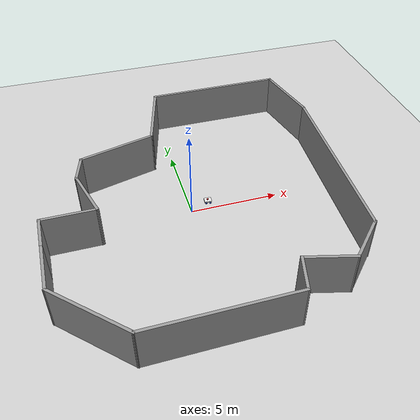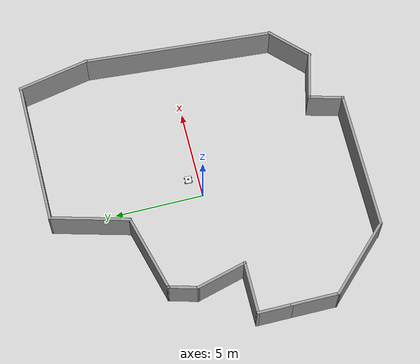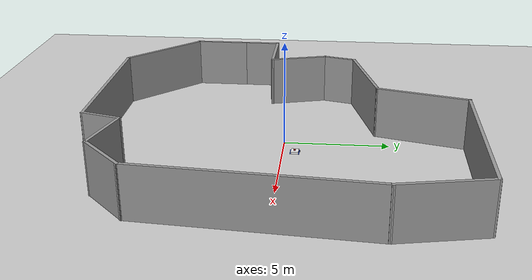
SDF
<sdf version="1.7">
 <world name="default">
  <light name="sun" type="directional">
   <pose>0 0 10 0 -0 0</pose>
   <diffuse>0.8 0.8 0.8 1</diffuse>
   <specular>0.2 0.2 0.2 1</specular>
   <attenuation>
    <range>1000</range>
    <constant>0.9</constant>
    <linear>0.01</linear>
    <quadratic>0.001</quadratic>
   </attenuation>
   <direction>-0.5 0.1 -0.9</direction>
   <spot><inner_angle>0</inner_angle><outer_angle>0</outer_angle><falloff>0</falloff></spot>
  </light>
  <model name="ground_plane">
   <static>1</static>
   <link name="link">
    <collision name="collision">
     <geometry><plane><normal>0 0 1</normal><size>100 100</size></plane></geometry>
     <surface><friction><ode><mu>100</mu><mu2>50</mu2></ode></friction></surface>
    </collision>
    <visual name="visual">
     <cast_shadows>0</cast_shadows>
     <geometry><plane><normal>0 0 1</normal><size>100 100</size></plane></geometry>
     <material>
      <script><uri>file://media/materials/scripts/gazebo.material</uri><name>Gazebo/Grey</name></script>
     </material>
    </visual>
   </link>
  </model>
  <gravity>0 0 -9.8</gravity>
  <magnetic_field>6e-06 2.3e-05 -4.2e-05</magnetic_field>
  <atmosphere type="adiabatic"/>
  <physics type="ode">
   <max_step_size>0.001</max_step_size>
   <real_time_factor>1</real_time_factor>
   <real_time_update_rate>1000</real_time_update_rate>
  </physics>
  <scene><ambient>0.4 0.4 0.4 1</ambient><background>0.7 0.7 0.7 1</background><shadows>1</shadows></scene>
  <spherical_coordinates>
   <surface_model>EARTH_WGS84</surface_model>
   <latitude_deg>0</latitude_deg>
   <longitude_deg>0</longitude_deg>
   <elevation>0</elevation>
   <heading_deg>0</heading_deg>
  </spherical_coordinates>
  <model name="my_bot">
   <link name="base_link">
    <inertial>
     <pose>0.228 0 0.045 0 -0 0</pose>
     <mass>2.5</mass>
     <inertia>
      <ixx>0.0591105</ixx>
      <ixy>0</ixy>
      <ixz>0.0044</ixz>
      <iyy>0.0344858</iyy>
      <iyz>-6.96389e-20</iyz>
      <izz>0.0800463</izz>
     </inertia>
    </inertial>
    <collision name="base_link_fixed_joint_lump__chassis_collision">
     <pose>0.1 0 1 0 -0 0</pose>
     <geometry><box><size>0.4 0.35 0.1</size></box></geometry>
    </collision>
    <collision name="base_link_fixed_joint_lump__laser_frame_collision_1">
     <pose>0.1 0 0.125 0 -0 0</pose>
     <geometry><cylinder><length>0.04</length><radius>0.05</radius></cylinder></geometry>
    </collision>
    <collision name="base_link_fixed_joint_lump__leftf_wheel_collision_2">
     <pose>0.22 0.20416 0 -1.5708 0 0</pose>
     <geometry><cylinder><length>0.04</length><radius>0.05</radius></cylinder></geometry>
     <surface><friction><ode><mu>0.001</mu><mu2>0.001</mu2></ode></friction></surface>
    </collision>
    <collision name="base_link_fixed_joint_lump__rightf_wheel_collision_3">
     <pose>0.22 -0.20416 0 1.5708 -0 0</pose>
     <geometry><cylinder><length>0.04</length><radius>0.05</radius></cylinder></geometry>
     <surface><friction><ode><mu>0.001</mu><mu2>0.001</mu2></ode></friction></surface>
    </collision>
    <visual name="base_link_fixed_joint_lump__chassis_visual">
     <pose>0.1 0 0.05 0 -0 0</pose>
     <geometry><box><size>0.4 0.35 0.1</size></box></geometry>
     <material>
      <script><name>Gazebo/White</name><uri>file://media/materials/scripts/gazebo.material</uri></script>
     </material>
    </visual>
    <visual name="base_link_fixed_joint_lump__camera_link_visual_1">
     <pose>0.31 0 0.07 0 -0 0</pose>
     <geometry><box><size>0.01 0.03 0.03</size></box></geometry>
     <material>
      <script><name>Gazebo/Red</name><uri>file://media/materials/scripts/gazebo.material</uri></script>
     </material>
    </visual>
    <visual name="base_link_fixed_joint_lump__laser_frame_visual_2">
     <pose>0.1 0 0.125 0 -0 0</pose>
     <geometry><cylinder><length>0.04</length><radius>0.05</radius></cylinder></geometry>
     <material>
      <script><name>Gazebo/Red</name><uri>file://media/materials/scripts/gazebo.material</uri></script>
     </material>
    </visual>
    <visual name="base_link_fixed_joint_lump__leftf_wheel_visual_3">
     <pose>0.22 0.20416 0 -1.5708 0 0</pose>
     <geometry><cylinder><length>0.04</length><radius>0.05</radius></cylinder></geometry>
     <material>
      <script><name>Gazebo/Blue</name><uri>file://media/materials/scripts/gazebo.material</uri></script>
     </material>
    </visual>
    <visual name="base_link_fixed_joint_lump__rightf_wheel_visual_4">
     <pose>0.22 -0.20416 0 1.5708 -0 0</pose>
     <geometry><cylinder><length>0.04</length><radius>0.05</radius></cylinder></geometry>
     <material>
      <script><name>Gazebo/Blue</name><uri>file://media/materials/scripts/gazebo.material</uri></script>
     </material>
    </visual>
    <sensor name="camera" type="camera">
     <visualize>1</visualize>
     <update_rate>10</update_rate>
     <camera>
      <horizontal_fov>1.089</horizontal_fov>
      <image><format>R8G8B8</format><width>640</width><height>480</height></image>
      <clip><near>0.05</near><far>8</far></clip>
     </camera>
     <plugin name="camera_controller" filename="libgazebo_ros_camera.so">
      <frame_name>camera_link_optical</frame_name>
     </plugin>
     <pose>0.31 0 0.07 0 -0 0</pose>
    </sensor>
    <sensor name="laser" type="ray">
     <visualize>0</visualize>
     <update_rate>10</update_rate>
     <ray>
      <scan>
       <horizontal>
        <samples>360</samples>
        <min_angle>-3.14</min_angle>
        <max_angle>3.14</max_angle>
        <resolution>1</resolution>
       </horizontal>
       <vertical><samples>1</samples><min_angle>0</min_angle><max_angle>0</max_angle></vertical>
      </scan>
      <range><min>0.3</min><max>12</max></range>
     </ray>
     <plugin name="laser_controller" filename="libgazebo_ros_ray_sensor.so">
      <ros><argument>~/out:=scan</argument></ros>
      <output_type>sensor_msgs/LaserScan</output_type>
      <frame_name>laser_frame</frame_name>
     </plugin>
     <pose>0.1 0 0.125 0 -0 0</pose>
    </sensor>
   </link>
   <joint name="left_wheel_joint" type="revolute">
    <pose relative_to="base_link">-0.02 0.20416 0 -1.5708 0 0</pose>
    <parent>base_link</parent>
    <child>left_wheel</child>
    <axis>
     <xyz>0 0 1</xyz>
     <limit><lower>-1e+16</lower><upper>1e+16</upper></limit>
     <dynamics><spring_reference>0</spring_reference><spring_stiffness>0</spring_stiffness></dynamics>
    </axis>
   </joint>
   <link name="left_wheel">
    <pose relative_to="left_wheel_joint">0 0 0 0 -0 0</pose>
    <inertial>
     <mass>0.5</mass>
     <inertia>
      <ixx>0.000379167</ixx>
      <ixy>0</ixy>
      <ixz>0</ixz>
      <iyy>0.000379167</iyy>
      <iyz>0</iyz>
      <izz>0.000625</izz>
     </inertia>
    </inertial>
    <collision name="left_wheel_collision">
     <geometry><cylinder><length>0.04</length><radius>0.05</radius></cylinder></geometry>
    </collision>
    <visual name="left_wheel_visual">
     <geometry><cylinder><length>0.04</length><radius>0.05</radius></cylinder></geometry>
     <material>
      <script><name>Gazebo/Blue</name><uri>file://media/materials/scripts/gazebo.material</uri></script>
     </material>
    </visual>
   </link>
   <joint name="right_wheel_joint" type="revolute">
    <pose relative_to="base_link">-0.02 -0.20416 0 1.5708 -0 0</pose>
    <parent>base_link</parent>
    <child>right_wheel</child>
    <axis>
     <xyz>0 0 -1</xyz>
     <limit><lower>-1e+16</lower><upper>1e+16</upper></limit>
     <dynamics><spring_reference>0</spring_reference><spring_stiffness>0</spring_stiffness></dynamics>
    </axis>
   </joint>
   <link name="right_wheel">
    <pose relative_to="right_wheel_joint">0 0 0 0 -0 0</pose>
    <inertial>
     <mass>0.5</mass>
     <inertia>
      <ixx>0.000379167</ixx>
      <ixy>0</ixy>
      <ixz>0</ixz>
      <iyy>0.000379167</iyy>
      <iyz>0</iyz>
      <izz>0.000625</izz>
     </inertia>
    </inertial>
    <collision name="right_wheel_collision">
     <geometry><cylinder><length>0.04</length><radius>0.05</radius></cylinder></geometry>
    </collision>
    <visual name="right_wheel_visual">
     <geometry><cylinder><length>0.04</length><radius>0.05</radius></cylinder></geometry>
     <material>
      <script><name>Gazebo/Blue</name><uri>file://media/materials/scripts/gazebo.material</uri></script>
     </material>
    </visual>
   </link>
   <plugin name="gazebo_ros2_control" filename="libgazebo_ros2_control.so">
    <parameters>/home/mohamed/medotest_ws/install/medo/share/medo/config/my_controllers.yaml</parameters>
    <parameters>/home/mohamed/medotest_ws/install/medo/share/medo/config/gaz_ros2_ctl_use_sim.yaml</parameters>
   </plugin>
   <frame name="camera_optical_joint" attached_to="camera_link"><pose>0 0 0 -1.5708 -0 -1.5708</pose></frame>
   <frame name="camera_link_optical" attached_to="camera_optical_joint"/>
   <frame name="camera_joint" attached_to="chassis"><pose>0.41 0 0.07 0 -0 0</pose></frame>
   <frame name="camera_link" attached_to="camera_joint"/>
   <frame name="laser_joint" attached_to="chassis"><pose>0.2 0 0.125 0 -0 0</pose></frame>
   <frame name="laser_frame" attached_to="laser_joint"/>
   <frame name="chassis_joint" attached_to="base_link"><pose>-0.1 0 0 0 -0 0</pose></frame>
   <frame name="chassis" attached_to="chassis_joint"/>
   <frame name="leftf_wheel_joint" attached_to="base_link"><pose>0.22 0.20416 0 -1.5708 0 0</pose></frame>
   <frame name="leftf_wheel" attached_to="leftf_wheel_joint"/>
   <frame name="rightf_wheel_joint" attached_to="base_link"><pose>0.22 -0.20416 0 1.5708 -0 0</pose></frame>
   <frame name="rightf_wheel" attached_to="rightf_wheel_joint"/>
   <pose>1.19703 0.571077 0.05 0 -0 3.0898</pose>
  </model>
  <model name="Untitled655">
   <pose>0.28679 -0.096816 0 0 -0 0</pose>
   <link name="Wall_0">
    <collision name="Wall_0_Collision">
     <geometry><box><size>3 0.15 2.5</size></box></geometry>
     <pose>0 0 1.25 0 -0 0</pose>
    </collision>
    <visual name="Wall_0_Visual">
     <pose>0 0 1.25 0 -0 0</pose>
     <geometry><box><size>3 0.15 2.5</size></box></geometry>
     <material>
      <script><uri>file://media/materials/scripts/gazebo.material</uri><name>Gazebo/Grey</name></script>
      <ambient>1 1 1 1</ambient>
     </material>
     <meta><layer>0</layer></meta>
    </visual>
    <pose>-6.80057 -0.954554 0 0 -0 3.14159</pose>
   </link>
   <link name="Wall_1">
    <collision name="Wall_1_Collision">
     <geometry><box><size>2 0.15 2.5</size></box></geometry>
     <pose>0 0 1.25 0 -0 0</pose>
    </collision>
    <visual name="Wall_1_Visual">
     <pose>0 0 1.25 0 -0 0</pose>
     <geometry><box><size>2 0.15 2.5</size></box></geometry>
     <material>
      <script><uri>file://media/materials/scripts/gazebo.material</uri><name>Gazebo/Grey</name></script>
      <ambient>1 1 1 1</ambient>
     </material>
     <meta><layer>0</layer></meta>
    </visual>
    <pose>-8.22557 -1.87955 0 0 -0 -1.5708</pose>
   </link>
   <link name="Wall_12">
    <collision name="Wall_12_Collision">
     <geometry><box><size>3 0.15 2.5</size></box></geometry>
     <pose>0 0 1.25 0 -0 0</pose>
    </collision>
    <visual name="Wall_12_Visual">
     <pose>0 0 1.25 0 -0 0</pose>
     <geometry><box><size>3 0.15 2.5</size></box></geometry>
     <material>
      <script><uri>file://media/materials/scripts/gazebo.material</uri><name>Gazebo/Grey</name></script>
      <ambient>1 1 1 1</ambient>
     </material>
     <meta><layer>0</layer></meta>
    </visual>
    <pose>-5.74438 0.421891 0 0 -0 1.8326</pose>
   </link>
   <link name="Wall_13">
    <collision name="Wall_13_Collision">
     <geometry><box><size>1.75 0.15 2.5</size></box></geometry>
     <pose>0 0 1.25 0 -0 0</pose>
    </collision>
    <visual name="Wall_13_Visual">
     <pose>0 0 1.25 0 -0 0</pose>
     <geometry><box><size>1.75 0.15 2.5</size></box></geometry>
     <material>
      <script><uri>file://media/materials/scripts/gazebo.material</uri><name>Gazebo/Grey</name></script>
      <ambient>1 1 1 1</ambient>
     </material>
     <meta><layer>0</layer></meta>
    </visual>
    <pose>-5.90615 2.57108 0 0 -0 1.309</pose>
   </link>
   <link name="Wall_14">
    <collision name="Wall_14_Collision">
     <geometry><box><size>4.5 0.15 2.5</size></box></geometry>
     <pose>0 0 1.25 0 -0 0</pose>
    </collision>
    <visual name="Wall_14_Visual">
     <pose>0 0 1.25 0 -0 0</pose>
     <geometry><box><size>4.5 0.15 2.5</size></box></geometry>
     <material>
      <script><uri>file://media/materials/scripts/gazebo.material</uri><name>Gazebo/Grey</name></script>
      <ambient>1 1 1 1</ambient>
     </material>
     <meta><layer>0</layer></meta>
    </visual>
    <pose>-3.5982 3.90675 0 0 -0 0.261799</pose>
   </link>
   <link name="Wall_15">
    <collision name="Wall_15_Collision">
     <geometry><box><size>4.5 0.15 2.5</size></box></geometry>
     <pose>0 0 1.25 0 -0 0</pose>
    </collision>
    <visual name="Wall_15_Visual">
     <pose>0 0 1.25 0 -0 0</pose>
     <geometry><box><size>4.5 0.15 2.5</size></box></geometry>
     <material>
      <script><uri>file://media/materials/scripts/gazebo.material</uri><name>Gazebo/Grey</name></script>
      <ambient>1 1 1 1</ambient>
     </material>
     <meta><layer>0</layer></meta>
    </visual>
    <pose>-0.934382 6.57057 0 0 -0 1.309</pose>
   </link>
   <link name="Wall_16">
    <collision name="Wall_16_Collision">
     <geometry><box><size>8 0.15 2.5</size></box></geometry>
     <pose>0 0 1.25 0 -0 0</pose>
    </collision>
    <visual name="Wall_16_Visual">
     <pose>0 0 1.25 0 -0 0</pose>
     <geometry><box><size>8 0.15 2.5</size></box></geometry>
     <material>
      <script><uri>file://media/materials/scripts/gazebo.material</uri><name>Gazebo/Grey</name></script>
      <ambient>1 1 1 1</ambient>
     </material>
     <meta><layer>0</layer></meta>
    </visual>
    <pose>3.55355 8.67146 0 0 -0 0</pose>
   </link>
   <link name="Wall_17">
    <collision name="Wall_17_Collision">
     <geometry><box><size>4.13239 0.15 2.5</size></box></geometry>
     <pose>0 0 1.25 0 -0 0</pose>
    </collision>
    <visual name="Wall_17_Visual">
     <pose>0 0 1.25 0 -0 0</pose>
     <geometry><box><size>4.13239 0.15 2.5</size></box></geometry>
     <material>
      <script><uri>file://media/materials/scripts/gazebo.material</uri><name>Gazebo/Grey</name></script>
      <ambient>1 1 1 1</ambient>
     </material>
     <meta><layer>0</layer></meta>
    </visual>
    <pose>7.86109 6.71736 0 0 -0 -1.37748</pose>
   </link>
   <link name="Wall_19">
    <collision name="Wall_19_Collision">
     <geometry><box><size>2.75 0.15 2.5</size></box></geometry>
     <pose>0 0 1.25 0 -0 0</pose>
    </collision>
    <visual name="Wall_19_Visual">
     <pose>0 0 1.25 0 -0 0</pose>
     <geometry><box><size>2.75 0.15 2.5</size></box></geometry>
     <material>
      <script><uri>file://media/materials/scripts/gazebo.material</uri><name>Gazebo/Grey</name></script>
      <ambient>1 1 1 1</ambient>
     </material>
     <meta><layer>0</layer></meta>
    </visual>
    <pose>6.53658 -6.62397 0 0 -0 0.785398</pose>
   </link>
   <link name="Wall_2">
    <collision name="Wall_2_Collision">
     <geometry><box><size>2.75 0.15 2.5</size></box></geometry>
     <pose>0 0 1.25 0 -0 0</pose>
    </collision>
    <visual name="Wall_2_Visual">
     <pose>0 0 1.25 0 -0 0</pose>
     <geometry><box><size>2.75 0.15 2.5</size></box></geometry>
     <material>
      <script><uri>file://media/materials/scripts/gazebo.material</uri><name>Gazebo/Grey</name></script>
      <ambient>1 1 1 1</ambient>
     </material>
     <meta><layer>0</layer></meta>
    </visual>
    <pose>-8.22557 -4.10455 0 0 -0 -1.5708</pose>
   </link>
   <link name="Wall_20">
    <collision name="Wall_20_Collision">
     <geometry><box><size>10.6476 0.15 2.5</size></box></geometry>
     <pose>0 0 1.25 0 -0 0</pose>
    </collision>
    <visual name="Wall_20_Visual">
     <pose>0 0 1.25 0 -0 0</pose>
     <geometry><box><size>10.6476 0.15 2.5</size></box></geometry>
     <material>
      <script><uri>file://media/materials/scripts/gazebo.material</uri><name>Gazebo/Grey</name></script>
      <ambient>1 1 1 1</ambient>
     </material>
     <meta><layer>0</layer></meta>
    </visual>
    <pose>7.84972 -0.470741 0 0 -0 1.49568</pose>
   </link>
   <link name="Wall_3">
    <collision name="Wall_3_Collision">
     <geometry><box><size>4.75 0.15 2.5</size></box></geometry>
     <pose>0 0 1.25 0 -0 0</pose>
    </collision>
    <visual name="Wall_3_Visual">
     <pose>0 0 1.25 0 -0 0</pose>
     <geometry><box><size>4.75 0.15 2.5</size></box></geometry>
     <material>
      <script><uri>file://media/materials/scripts/gazebo.material</uri><name>Gazebo/Grey</name></script>
      <ambient>1 1 1 1</ambient>
     </material>
     <meta><layer>0</layer></meta>
    </visual>
    <pose>-6.59922 -7.0309 0 0 -0 -0.785398</pose>
   </link>
   <link name="Wall_4">
    <collision name="Wall_4_Collision">
     <geometry><box><size>7.75 0.15 2.5</size></box></geometry>
     <pose>0 0 1.25 0 -0 0</pose>
    </collision>
    <visual name="Wall_4_Visual">
     <pose>0 0 1.25 0 -0 0</pose>
     <geometry><box><size>7.75 0.15 2.5</size></box></geometry>
     <material>
      <script><uri>file://media/materials/scripts/gazebo.material</uri><name>Gazebo/Grey</name></script>
      <ambient>1 1 1 1</ambient>
     </material>
     <meta><layer>0</layer></meta>
    </visual>
    <pose>-1.17288 -8.65724 0 0 -0 0</pose>
   </link>
   <link name="Wall_5">
    <collision name="Wall_5_Collision">
     <geometry><box><size>2 0.15 2.5</size></box></geometry>
     <pose>0 0 1.25 0 -0 0</pose>
    </collision>
    <visual name="Wall_5_Visual">
     <pose>0 0 1.25 0 -0 0</pose>
     <geometry><box><size>2 0.15 2.5</size></box></geometry>
     <material>
      <script><uri>file://media/materials/scripts/gazebo.material</uri><name>Gazebo/Grey</name></script>
      <ambient>1 1 1 1</ambient>
     </material>
     <meta><layer>0</layer></meta>
    </visual>
    <pose>2.86653 -7.76376 0 0 -0 1.309</pose>
   </link>
   <link name="Wall_6">
    <collision name="Wall_6_Collision">
     <geometry><box><size>2.75 0.15 2.5</size></box></geometry>
     <pose>0 0 1.25 0 -0 0</pose>
    </collision>
    <visual name="Wall_6_Visual">
     <pose>0 0 1.25 0 -0 0</pose>
     <geometry><box><size>2.75 0.15 2.5</size></box></geometry>
     <material>
      <script><uri>file://media/materials/scripts/gazebo.material</uri><name>Gazebo/Grey</name></script>
      <ambient>1 1 1 1</ambient>
     </material>
     <meta><layer>0</layer></meta>
    </visual>
    <pose>4.36164 -7.20675 0 0 -0 -0.261799</pose>
   </link>
   <static>1</static>
  </model>
 </world>
</sdf>
